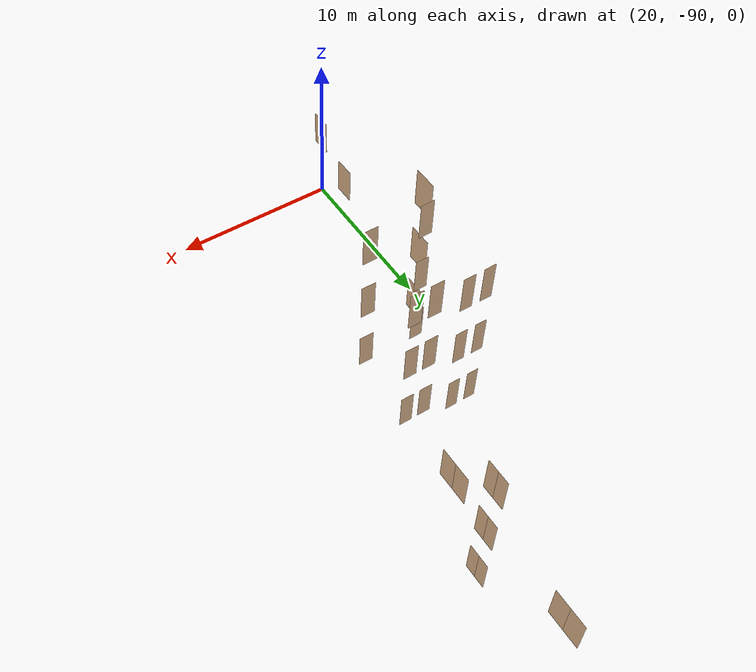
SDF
<sdf version="1.7">
 <world name="sim_world">
  <model name="Snull20">
   <pose>27.81230631370644 -62.99546354030538 0.0 0 0 1.5707963267948966</pose>
   <link name="right">
    <pose>0.34362282044580716 0 1.11 0 0 0</pose>
    <visual name="right_visual">
     <geometry><box><size>0.6772456408916143 0.03 2.2</size></box></geometry>
     <material>
      <ambient>0.5 0.25 0 0.6</ambient>
      <diffuse>0.5 0.25 0 0.6</diffuse>
      <pbr><metal><metalness>0.0</metalness></metal></pbr>
     </material>
    </visual>
    <collision name="right_collision">
     <geometry><box><size>0.6772456408916143 0.03 2.2</size></box></geometry>
     <surface><contact><collide_bitmask>0x02</collide_bitmask></contact></surface>
    </collision>
    <inertial>
     <mass>50.0</mass>
     <inertia><ixx>20.17041666666667</ixx><iyy>22.077756908777896</iyy><izz>1.9148402421112227</izz></inertia>
    </inertial>
   </link>
   <joint name="right_joint" type="prismatic">
    <parent>world</parent>
    <child>right</child>
    <axis>
     <xyz>1 0 0</xyz>
     <limit><lower>0.0</lower><upper>0.6872456408916143</upper><effort>500.0</effort></limit>
    </axis>
   </joint>
   <link name="left">
    <pose>-0.34362282044580716 0 1.11 0 0 0</pose>
    <visual name="left_visual">
     <geometry><box><size>0.6772456408916143 0.03 2.2</size></box></geometry>
     <material>
      <ambient>0.5 0.25 0 0.6</ambient>
      <diffuse>0.5 0.25 0 0.6</diffuse>
      <pbr><metal><metalness>0.0</metalness></metal></pbr>
     </material>
    </visual>
    <collision name="left_collision">
     <geometry><box><size>0.6772456408916143 0.03 2.2</size></box></geometry>
     <surface><contact><collide_bitmask>0x02</collide_bitmask></contact></surface>
    </collision>
    <inertial>
     <mass>50.0</mass>
     <inertia><ixx>20.17041666666667</ixx><iyy>22.077756908777896</iyy><izz>1.9148402421112227</izz></inertia>
    </inertial>
   </link>
   <joint name="left_joint" type="prismatic">
    <parent>world</parent>
    <child>left</child>
    <axis>
     <xyz>1 0 0</xyz>
     <limit><lower>-0.6872456408916143</lower><upper>0.0</upper><effort>500.0</effort></limit>
    </axis>
   </joint>
   <plugin name="register_component" filename="libregister_component.so">
    <component name="Door">
     <v_max_door>0.2</v_max_door>
     <a_max_door>0.2</a_max_door>
     <a_nom_door>0.08</a_nom_door>
     <dx_min_door>0.001</dx_min_door>
     <f_max_door>100.0</f_max_door>
     <ros_interface>true</ros_interface>
     <door name="Snull20" type="DoubleSlidingDoor" left_joint_name="left_joint" right_joint_name="right_joint"/>
    </component>
   </plugin>
  </model>
  <model name="0null20">
   <pose>27.81230631370644 -62.99546354030538 4.0 0 0 1.5707963267948966</pose>
   <link name="right">
    <pose>0.34362282044580716 0 1.11 0 0 0</pose>
    <visual name="right_visual">
     <geometry><box><size>0.6772456408916143 0.03 2.2</size></box></geometry>
     <material>
      <ambient>0.5 0.25 0 0.6</ambient>
      <diffuse>0.5 0.25 0 0.6</diffuse>
      <pbr><metal><metalness>0.0</metalness></metal></pbr>
     </material>
    </visual>
    <collision name="right_collision">
     <geometry><box><size>0.6772456408916143 0.03 2.2</size></box></geometry>
     <surface><contact><collide_bitmask>0x02</collide_bitmask></contact></surface>
    </collision>
    <inertial>
     <mass>50.0</mass>
     <inertia><ixx>20.17041666666667</ixx><iyy>22.077756908777896</iyy><izz>1.9148402421112227</izz></inertia>
    </inertial>
   </link>
   <joint name="right_joint" type="prismatic">
    <parent>world</parent>
    <child>right</child>
    <axis>
     <xyz>1 0 0</xyz>
     <limit><lower>0.0</lower><upper>0.6872456408916143</upper><effort>500.0</effort></limit>
    </axis>
   </joint>
   <link name="left">
    <pose>-0.34362282044580716 0 1.11 0 0 0</pose>
    <visual name="left_visual">
     <geometry><box><size>0.6772456408916143 0.03 2.2</size></box></geometry>
     <material>
      <ambient>0.5 0.25 0 0.6</ambient>
      <diffuse>0.5 0.25 0 0.6</diffuse>
      <pbr><metal><metalness>0.0</metalness></metal></pbr>
     </material>
    </visual>
    <collision name="left_collision">
     <geometry><box><size>0.6772456408916143 0.03 2.2</size></box></geometry>
     <surface><contact><collide_bitmask>0x02</collide_bitmask></contact></surface>
    </collision>
    <inertial>
     <mass>50.0</mass>
     <inertia><ixx>20.17041666666667</ixx><iyy>22.077756908777896</iyy><izz>1.9148402421112227</izz></inertia>
    </inertial>
   </link>
   <joint name="left_joint" type="prismatic">
    <parent>world</parent>
    <child>left</child>
    <axis>
     <xyz>1 0 0</xyz>
     <limit><lower>-0.6872456408916143</lower><upper>0.0</upper><effort>500.0</effort></limit>
    </axis>
   </joint>
   <plugin name="register_component" filename="libregister_component.so">
    <component name="Door">
     <v_max_door>0.2</v_max_door>
     <a_max_door>0.2</a_max_door>
     <a_nom_door>0.08</a_nom_door>
     <dx_min_door>0.001</dx_min_door>
     <f_max_door>100.0</f_max_door>
     <ros_interface>true</ros_interface>
     <door name="0null20" type="DoubleSlidingDoor" left_joint_name="left_joint" right_joint_name="right_joint"/>
    </component>
   </plugin>
  </model>
  <model name="0null33">
   <pose>27.455960870701546 -65.96759138259338 4.0 0 0 1.5707963267948966</pose>
   <link name="right">
    <pose>0.4972370533547412 0 1.11 0 0 0</pose>
    <visual name="right_visual">
     <geometry><box><size>0.9844741067094824 0.03 2.2</size></box></geometry>
     <material>
      <ambient>0.5 0.25 0 0.6</ambient>
      <diffuse>0.5 0.25 0 0.6</diffuse>
      <pbr><metal><metalness>0.0</metalness></metal></pbr>
     </material>
    </visual>
    <collision name="right_collision">
     <geometry><box><size>0.9844741067094824 0.03 2.2</size></box></geometry>
     <surface><contact><collide_bitmask>0x02</collide_bitmask></contact></surface>
    </collision>
    <inertial>
     <mass>50.0</mass>
     <inertia><ixx>20.17041666666667</ixx><iyy>24.204955278255976</iyy><izz>4.042038611589306</izz></inertia>
    </inertial>
   </link>
   <joint name="right_joint" type="revolute">
    <parent>world</parent>
    <child>right</child>
    <axis><xyz>0 0 -1</xyz><limit><lower>0</lower><upper>1.57</upper></limit></axis>
    <pose>0.4972370533547412 0 0 0 0 0</pose>
   </joint>
   <link name="left">
    <pose>-0.4972370533547412 0 1.11 0 0 0</pose>
    <visual name="left_visual">
     <geometry><box><size>0.9844741067094824 0.03 2.2</size></box></geometry>
     <material>
      <ambient>0.5 0.25 0 0.6</ambient>
      <diffuse>0.5 0.25 0 0.6</diffuse>
      <pbr><metal><metalness>0.0</metalness></metal></pbr>
     </material>
    </visual>
    <collision name="left_collision">
     <geometry><box><size>0.9844741067094824 0.03 2.2</size></box></geometry>
     <surface><contact><collide_bitmask>0x02</collide_bitmask></contact></surface>
    </collision>
    <inertial>
     <mass>50.0</mass>
     <inertia><ixx>20.17041666666667</ixx><iyy>24.204955278255976</iyy><izz>4.042038611589306</izz></inertia>
    </inertial>
   </link>
   <joint name="left_joint" type="revolute">
    <parent>world</parent>
    <child>left</child>
    <axis><xyz>0 0 -1</xyz><limit><lower>-1.57</lower><upper>0</upper></limit></axis>
    <pose>-0.4972370533547412 0 0 0 0 0</pose>
   </joint>
   <plugin name="register_component" filename="libregister_component.so">
    <component name="Door">
     <v_max_door>0.5</v_max_door>
     <a_max_door>0.3</a_max_door>
     <a_nom_door>0.15</a_nom_door>
     <dx_min_door>0.01</dx_min_door>
     <f_max_door>500.0</f_max_door>
     <ros_interface>true</ros_interface>
     <door name="0null33" type="DoubleSwingDoor" left_joint_name="left_joint" right_joint_name="right_joint"/>
    </component>
   </plugin>
  </model>
  <model name="0null50">
   <pose>27.46846880483887 -57.59207333009741 4.0 0 0 1.5707963267948966</pose>
   <link name="right">
    <pose>0.5057032445954519 0 1.11 0 0 0</pose>
    <visual name="right_visual">
     <geometry><box><size>1.0014064891909038 0.03 2.2</size></box></geometry>
     <material>
      <ambient>0.5 0.25 0 0.6</ambient>
      <diffuse>0.5 0.25 0 0.6</diffuse>
      <pbr><metal><metalness>0.0</metalness></metal></pbr>
     </material>
    </visual>
    <collision name="right_collision">
     <geometry><box><size>1.0014064891909038 0.03 2.2</size></box></geometry>
     <surface><contact><collide_bitmask>0x02</collide_bitmask></contact></surface>
    </collision>
    <inertial>
     <mass>50.0</mass>
     <inertia><ixx>20.17041666666667</ixx><iyy>24.345062319140222</iyy><izz>4.182145652473548</izz></inertia>
    </inertial>
   </link>
   <joint name="right_joint" type="revolute">
    <parent>world</parent>
    <child>right</child>
    <axis><xyz>0 0 -1</xyz><limit><lower>0</lower><upper>1.57</upper></limit></axis>
    <pose>0.5057032445954519 0 0 0 0 0</pose>
   </joint>
   <link name="left">
    <pose>-0.5057032445954519 0 1.11 0 0 0</pose>
    <visual name="left_visual">
     <geometry><box><size>1.0014064891909038 0.03 2.2</size></box></geometry>
     <material>
      <ambient>0.5 0.25 0 0.6</ambient>
      <diffuse>0.5 0.25 0 0.6</diffuse>
      <pbr><metal><metalness>0.0</metalness></metal></pbr>
     </material>
    </visual>
    <collision name="left_collision">
     <geometry><box><size>1.0014064891909038 0.03 2.2</size></box></geometry>
     <surface><contact><collide_bitmask>0x02</collide_bitmask></contact></surface>
    </collision>
    <inertial>
     <mass>50.0</mass>
     <inertia><ixx>20.17041666666667</ixx><iyy>24.345062319140222</iyy><izz>4.182145652473548</izz></inertia>
    </inertial>
   </link>
   <joint name="left_joint" type="revolute">
    <parent>world</parent>
    <child>left</child>
    <axis><xyz>0 0 -1</xyz><limit><lower>-1.57</lower><upper>0</upper></limit></axis>
    <pose>-0.5057032445954519 0 0 0 0 0</pose>
   </joint>
   <plugin name="register_component" filename="libregister_component.so">
    <component name="Door">
     <v_max_door>0.5</v_max_door>
     <a_max_door>0.3</a_max_door>
     <a_nom_door>0.15</a_nom_door>
     <dx_min_door>0.01</dx_min_door>
     <f_max_door>500.0</f_max_door>
     <ros_interface>true</ros_interface>
     <door name="0null50" type="DoubleSwingDoor" left_joint_name="left_joint" right_joint_name="right_joint"/>
    </component>
   </plugin>
  </model>
  <model name="0null51">
   <pose>23.572079304036127 -69.87992383228163 4.0 0 0 0.0</pose>
   <link name="right">
    <pose>0 0 1.11 0 0 0</pose>
    <visual name="right_visual">
     <geometry><box><size>0.6295848112608746 0.03 2.2</size></box></geometry>
     <material>
      <ambient>0.5 0.25 0 0.6</ambient>
      <diffuse>0.5 0.25 0 0.6</diffuse>
      <pbr><metal><metalness>0.0</metalness></metal></pbr>
     </material>
    </visual>
    <collision name="right_collision">
     <geometry><box><size>0.6295848112608746 0.03 2.2</size></box></geometry>
     <surface><contact><collide_bitmask>0x02</collide_bitmask></contact></surface>
    </collision>
    <inertial>
     <mass>50.0</mass>
     <inertia><ixx>20.17041666666667</ixx><iyy>21.8182376440433</iyy><izz>1.65532097737663</izz></inertia>
    </inertial>
   </link>
   <joint name="right_joint" type="revolute">
    <parent>world</parent>
    <child>right</child>
    <axis><xyz>0 0 -1</xyz><limit><lower>0</lower><upper>1.57</upper></limit></axis>
    <pose>0.3197924056304373 0 0 0 0 0</pose>
   </joint>
   <plugin name="register_component" filename="libregister_component.so">
    <component name="Door">
     <v_max_door>0.5</v_max_door>
     <a_max_door>0.3</a_max_door>
     <a_nom_door>0.15</a_nom_door>
     <dx_min_door>0.01</dx_min_door>
     <f_max_door>500.0</f_max_door>
     <ros_interface>true</ros_interface>
     <door name="0null51" type="SwingDoor" left_joint_name="empty_joint" right_joint_name="right_joint"/>
    </component>
   </plugin>
  </model>
  <model name="0null52">
   <pose>24.693816973453295 -69.87992383228163 4.0 0 0 3.141592653589793</pose>
   <link name="right">
    <pose>0 0 1.11 0 0 0</pose>
    <visual name="right_visual">
     <geometry><box><size>0.6492614718291401 0.03 2.2</size></box></geometry>
     <material>
      <ambient>0.5 0.25 0 0.6</ambient>
      <diffuse>0.5 0.25 0 0.6</diffuse>
      <pbr><metal><metalness>0.0</metalness></metal></pbr>
     </material>
    </visual>
    <collision name="right_collision">
     <geometry><box><size>0.6492614718291401 0.03 2.2</size></box></geometry>
     <surface><contact><collide_bitmask>0x02</collide_bitmask></contact></surface>
    </collision>
    <inertial>
     <mass>50.0</mass>
     <inertia><ixx>20.17041666666667</ixx><iyy>21.923085245007258</iyy><izz>1.7601685783405887</izz></inertia>
    </inertial>
   </link>
   <joint name="right_joint" type="revolute">
    <parent>world</parent>
    <child>right</child>
    <axis><xyz>0 0 1</xyz><limit><lower>0</lower><upper>1.57</upper></limit></axis>
    <pose>0.32963073591457004 0 0 0 0 0</pose>
   </joint>
   <plugin name="register_component" filename="libregister_component.so">
    <component name="Door">
     <v_max_door>0.5</v_max_door>
     <a_max_door>0.3</a_max_door>
     <a_nom_door>0.15</a_nom_door>
     <dx_min_door>0.01</dx_min_door>
     <f_max_door>500.0</f_max_door>
     <ros_interface>true</ros_interface>
     <door name="0null52" type="SwingDoor" left_joint_name="empty_joint" right_joint_name="right_joint"/>
    </component>
   </plugin>
  </model>
  <model name="0null53">
   <pose>26.114606280103033 -70.32860396520176 4.0 0 0 0.0</pose>
   <link name="right">
    <pose>0 0 1.11 0 0 0</pose>
    <visual name="right_visual">
     <geometry><box><size>0.7228155919799855 0.03 2.2</size></box></geometry>
     <material>
      <ambient>0.5 0.25 0 0.6</ambient>
      <diffuse>0.5 0.25 0 0.6</diffuse>
      <pbr><metal><metalness>0.0</metalness></metal></pbr>
     </material>
    </visual>
    <collision name="right_collision">
     <geometry><box><size>0.7228155919799855 0.03 2.2</size></box></geometry>
     <surface><contact><collide_bitmask>0x02</collide_bitmask></contact></surface>
    </collision>
    <inertial>
     <mass>50.0</mass>
     <inertia><ixx>20.17041666666667</ixx><iyy>22.343593250039074</iyy><izz>2.1806765833724038</izz></inertia>
    </inertial>
   </link>
   <joint name="right_joint" type="revolute">
    <parent>world</parent>
    <child>right</child>
    <axis><xyz>0 0 -1</xyz><limit><lower>0</lower><upper>1.57</upper></limit></axis>
    <pose>0.36640779598999274 0 0 0 0 0</pose>
   </joint>
   <plugin name="register_component" filename="libregister_component.so">
    <component name="Door">
     <v_max_door>0.5</v_max_door>
     <a_max_door>0.3</a_max_door>
     <a_nom_door>0.15</a_nom_door>
     <dx_min_door>0.01</dx_min_door>
     <f_max_door>500.0</f_max_door>
     <ros_interface>true</ros_interface>
     <door name="0null53" type="SwingDoor" left_joint_name="empty_joint" right_joint_name="right_joint"/>
    </component>
   </plugin>
  </model>
  <model name="0null54">
   <pose>27.208938505768565 -70.32860396520176 4.0 0 0 3.141592653589793</pose>
   <link name="right">
    <pose>0 0 1.11 0 0 0</pose>
    <visual name="right_visual">
     <geometry><box><size>0.708067430832992 0.03 2.2</size></box></geometry>
     <material>
      <ambient>0.5 0.25 0 0.6</ambient>
      <diffuse>0.5 0.25 0 0.6</diffuse>
      <pbr><metal><metalness>0.0</metalness></metal></pbr>
     </material>
    </visual>
    <collision name="right_collision">
     <geometry><box><size>0.708067430832992 0.03 2.2</size></box></geometry>
     <surface><contact><collide_bitmask>0x02</collide_bitmask></contact></surface>
    </collision>
    <inertial>
     <mass>50.0</mass>
     <inertia><ixx>20.17041666666667</ixx><iyy>22.255664527526815</iyy><izz>2.092747860860141</izz></inertia>
    </inertial>
   </link>
   <joint name="right_joint" type="revolute">
    <parent>world</parent>
    <child>right</child>
    <axis><xyz>0 0 1</xyz><limit><lower>0</lower><upper>1.57</upper></limit></axis>
    <pose>0.359033715416496 0 0 0 0 0</pose>
   </joint>
   <plugin name="register_component" filename="libregister_component.so">
    <component name="Door">
     <v_max_door>0.5</v_max_door>
     <a_max_door>0.3</a_max_door>
     <a_nom_door>0.15</a_nom_door>
     <dx_min_door>0.01</dx_min_door>
     <f_max_door>500.0</f_max_door>
     <ros_interface>true</ros_interface>
     <door name="0null54" type="SwingDoor" left_joint_name="empty_joint" right_joint_name="right_joint"/>
    </component>
   </plugin>
  </model>
  <model name="0null55">
   <pose>23.66503005637903 -74.55944068998987 4.0 0 0 -3.1305344986137533</pose>
   <link name="right">
    <pose>0 0 1.11 0 0 0</pose>
    <visual name="right_visual">
     <geometry><box><size>0.7564658594399267 0.03 2.2</size></box></geometry>
     <material>
      <ambient>0.5 0.25 0 0.6</ambient>
      <diffuse>0.5 0.25 0 0.6</diffuse>
      <pbr><metal><metalness>0.0</metalness></metal></pbr>
     </material>
    </visual>
    <collision name="right_collision">
     <geometry><box><size>0.7564658594399267 0.03 2.2</size></box></geometry>
     <surface><contact><collide_bitmask>0x02</collide_bitmask></contact></surface>
    </collision>
    <inertial>
     <mass>50.0</mass>
     <inertia><ixx>20.17041666666667</ixx><iyy>22.551002485409114</iyy><izz>2.3880858187424456</izz></inertia>
    </inertial>
   </link>
   <joint name="right_joint" type="revolute">
    <parent>world</parent>
    <child>right</child>
    <axis><xyz>0 0 1</xyz><limit><lower>0</lower><upper>1.57</upper></limit></axis>
    <pose>0.38323292971996337 0 0 0 0 0</pose>
   </joint>
   <plugin name="register_component" filename="libregister_component.so">
    <component name="Door">
     <v_max_door>0.5</v_max_door>
     <a_max_door>0.3</a_max_door>
     <a_nom_door>0.15</a_nom_door>
     <dx_min_door>0.01</dx_min_door>
     <f_max_door>500.0</f_max_door>
     <ros_interface>true</ros_interface>
     <door name="0null55" type="SwingDoor" left_joint_name="empty_joint" right_joint_name="right_joint"/>
    </component>
   </plugin>
  </model>
  <model name="0null56">
   <pose>26.843818840309133 -74.56367845274983 4.0 0 0 0.0</pose>
   <link name="right">
    <pose>0 0 1.11 0 0 0</pose>
    <visual name="right_visual">
     <geometry><box><size>0.7968550946495883 0.03 2.2</size></box></geometry>
     <material>
      <ambient>0.5 0.25 0 0.6</ambient>
      <diffuse>0.5 0.25 0 0.6</diffuse>
      <pbr><metal><metalness>0.0</metalness></metal></pbr>
     </material>
    </visual>
    <collision name="right_collision">
     <geometry><box><size>0.7968550946495883 0.03 2.2</size></box></geometry>
     <surface><contact><collide_bitmask>0x02</collide_bitmask></contact></surface>
    </collision>
    <inertial>
     <mass>50.0</mass>
     <inertia><ixx>20.17041666666667</ixx><iyy>22.812408507787524</iyy><izz>2.6494918411208515</izz></inertia>
    </inertial>
   </link>
   <joint name="right_joint" type="revolute">
    <parent>world</parent>
    <child>right</child>
    <axis><xyz>0 0 -1</xyz><limit><lower>0</lower><upper>1.57</upper></limit></axis>
    <pose>0.40342754732479413 0 0 0 0 0</pose>
   </joint>
   <plugin name="register_component" filename="libregister_component.so">
    <component name="Door">
     <v_max_door>0.5</v_max_door>
     <a_max_door>0.3</a_max_door>
     <a_nom_door>0.15</a_nom_door>
     <dx_min_door>0.01</dx_min_door>
     <f_max_door>500.0</f_max_door>
     <ros_interface>true</ros_interface>
     <door name="0null56" type="SwingDoor" left_joint_name="empty_joint" right_joint_name="right_joint"/>
    </component>
   </plugin>
  </model>
  <model name="0null57">
   <pose>22.824216853974523 -75.96718067430828 4.0 0 0 -1.5707963267948966</pose>
   <link name="right">
    <pose>0 0 1.11 0 0 0</pose>
    <visual name="right_visual">
     <geometry><box><size>1.2964257178060643 0.03 2.2</size></box></geometry>
     <material>
      <ambient>0.5 0.25 0 0.6</ambient>
      <diffuse>0.5 0.25 0 0.6</diffuse>
      <pbr><metal><metalness>0.0</metalness></metal></pbr>
     </material>
    </visual>
    <collision name="right_collision">
     <geometry><box><size>1.2964257178060643 0.03 2.2</size></box></geometry>
     <surface><contact><collide_bitmask>0x02</collide_bitmask></contact></surface>
    </collision>
    <inertial>
     <mass>50.0</mass>
     <inertia><ixx>20.17041666666667</ixx><iyy>27.16966517412071</iyy><izz>7.006748507454038</izz></inertia>
    </inertial>
   </link>
   <joint name="right_joint" type="revolute">
    <parent>world</parent>
    <child>right</child>
    <axis><xyz>0 0 -1</xyz><limit><lower>0</lower><upper>1.57</upper></limit></axis>
    <pose>0.6532128589030322 0 0 0 0 0</pose>
   </joint>
   <plugin name="register_component" filename="libregister_component.so">
    <component name="Door">
     <v_max_door>0.5</v_max_door>
     <a_max_door>0.3</a_max_door>
     <a_nom_door>0.15</a_nom_door>
     <dx_min_door>0.01</dx_min_door>
     <f_max_door>500.0</f_max_door>
     <ros_interface>true</ros_interface>
     <door name="0null57" type="SwingDoor" left_joint_name="empty_joint" right_joint_name="right_joint"/>
    </component>
   </plugin>
  </model>
  <model name="0null61">
   <pose>21.194563715789855 -85.5821416570212 4.0 0 0 -1.5707963267948966</pose>
   <link name="right">
    <pose>0 0 1.11 0 0 0</pose>
    <visual name="right_visual">
     <geometry><box><size>1.2200713138931485 0.03 2.2</size></box></geometry>
     <material>
      <ambient>0.5 0.25 0 0.6</ambient>
      <diffuse>0.5 0.25 0 0.6</diffuse>
      <pbr><metal><metalness>0.0</metalness></metal></pbr>
     </material>
    </visual>
    <collision name="right_collision">
     <geometry><box><size>1.2200713138931485 0.03 2.2</size></box></geometry>
     <surface><contact><collide_bitmask>0x02</collide_bitmask></contact></surface>
    </collision>
    <inertial>
     <mass>50.0</mass>
     <inertia><ixx>20.17041666666667</ixx><iyy>26.36905837910398</iyy><izz>6.206141712437307</izz></inertia>
    </inertial>
   </link>
   <joint name="right_joint" type="revolute">
    <parent>world</parent>
    <child>right</child>
    <axis><xyz>0 0 1</xyz><limit><lower>0</lower><upper>1.57</upper></limit></axis>
    <pose>0.6150356569465742 0 0 0 0 0</pose>
   </joint>
   <plugin name="register_component" filename="libregister_component.so">
    <component name="Door">
     <v_max_door>0.5</v_max_door>
     <a_max_door>0.3</a_max_door>
     <a_nom_door>0.15</a_nom_door>
     <dx_min_door>0.01</dx_min_door>
     <f_max_door>500.0</f_max_door>
     <ros_interface>true</ros_interface>
     <door name="0null61" type="SwingDoor" left_joint_name="empty_joint" right_joint_name="right_joint"/>
    </component>
   </plugin>
  </model>
  <model name="0null62">
   <pose>20.1770526079976 -89.85169697195977 4.0 0 0 -1.5674074995689025</pose>
   <link name="right">
    <pose>0 0 1.11 0 0 0</pose>
    <visual name="right_visual">
     <geometry><box><size>1.268056847708154 0.03 2.2</size></box></geometry>
     <material>
      <ambient>0.5 0.25 0 0.6</ambient>
      <diffuse>0.5 0.25 0 0.6</diffuse>
      <pbr><metal><metalness>0.0</metalness></metal></pbr>
     </material>
    </visual>
    <collision name="right_collision">
     <geometry><box><size>1.268056847708154 0.03 2.2</size></box></geometry>
     <surface><contact><collide_bitmask>0x02</collide_bitmask></contact></surface>
    </collision>
    <inertial>
     <mass>50.0</mass>
     <inertia><ixx>20.17041666666667</ixx><iyy>26.866534037581424</iyy><izz>6.703617370914752</izz></inertia>
    </inertial>
   </link>
   <joint name="right_joint" type="revolute">
    <parent>world</parent>
    <child>right</child>
    <axis><xyz>0 0 1</xyz><limit><lower>0</lower><upper>1.57</upper></limit></axis>
    <pose>0.639028423854077 0 0 0 0 0</pose>
   </joint>
   <plugin name="register_component" filename="libregister_component.so">
    <component name="Door">
     <v_max_door>0.5</v_max_door>
     <a_max_door>0.3</a_max_door>
     <a_nom_door>0.15</a_nom_door>
     <dx_min_door>0.01</dx_min_door>
     <f_max_door>500.0</f_max_door>
     <ros_interface>true</ros_interface>
     <door name="0null62" type="SwingDoor" left_joint_name="empty_joint" right_joint_name="right_joint"/>
    </component>
   </plugin>
  </model>
  <model name="1null20">
   <pose>27.81230631370644 -62.99546354030538 8.0 0 0 1.5707963267948966</pose>
   <link name="right">
    <pose>0.34362282044580716 0 1.11 0 0 0</pose>
    <visual name="right_visual">
     <geometry><box><size>0.6772456408916143 0.03 2.2</size></box></geometry>
     <material>
      <ambient>0.5 0.25 0 0.6</ambient>
      <diffuse>0.5 0.25 0 0.6</diffuse>
      <pbr><metal><metalness>0.0</metalness></metal></pbr>
     </material>
    </visual>
    <collision name="right_collision">
     <geometry><box><size>0.6772456408916143 0.03 2.2</size></box></geometry>
     <surface><contact><collide_bitmask>0x02</collide_bitmask></contact></surface>
    </collision>
    <inertial>
     <mass>50.0</mass>
     <inertia><ixx>20.17041666666667</ixx><iyy>22.077756908777896</iyy><izz>1.9148402421112227</izz></inertia>
    </inertial>
   </link>
   <joint name="right_joint" type="prismatic">
    <parent>world</parent>
    <child>right</child>
    <axis>
     <xyz>1 0 0</xyz>
     <limit><lower>0.0</lower><upper>0.6872456408916143</upper><effort>500.0</effort></limit>
    </axis>
   </joint>
   <link name="left">
    <pose>-0.34362282044580716 0 1.11 0 0 0</pose>
    <visual name="left_visual">
     <geometry><box><size>0.6772456408916143 0.03 2.2</size></box></geometry>
     <material>
      <ambient>0.5 0.25 0 0.6</ambient>
      <diffuse>0.5 0.25 0 0.6</diffuse>
      <pbr><metal><metalness>0.0</metalness></metal></pbr>
     </material>
    </visual>
    <collision name="left_collision">
     <geometry><box><size>0.6772456408916143 0.03 2.2</size></box></geometry>
     <surface><contact><collide_bitmask>0x02</collide_bitmask></contact></surface>
    </collision>
    <inertial>
     <mass>50.0</mass>
     <inertia><ixx>20.17041666666667</ixx><iyy>22.077756908777896</iyy><izz>1.9148402421112227</izz></inertia>
    </inertial>
   </link>
   <joint name="left_joint" type="prismatic">
    <parent>world</parent>
    <child>left</child>
    <axis>
     <xyz>1 0 0</xyz>
     <limit><lower>-0.6872456408916143</lower><upper>0.0</upper><effort>500.0</effort></limit>
    </axis>
   </joint>
   <plugin name="register_component" filename="libregister_component.so">
    <component name="Door">
     <v_max_door>0.2</v_max_door>
     <a_max_door>0.2</a_max_door>
     <a_nom_door>0.08</a_nom_door>
     <dx_min_door>0.001</dx_min_door>
     <f_max_door>100.0</f_max_door>
     <ros_interface>true</ros_interface>
     <door name="1null20" type="DoubleSlidingDoor" left_joint_name="left_joint" right_joint_name="right_joint"/>
    </component>
   </plugin>
  </model>
  <model name="1null51">
   <pose>23.572079304036127 -69.87992383228163 8.0 0 0 0.0</pose>
   <link name="right">
    <pose>0 0 1.11 0 0 0</pose>
    <visual name="right_visual">
     <geometry><box><size>0.6295848112608746 0.03 2.2</size></box></geometry>
     <material>
      <ambient>0.5 0.25 0 0.6</ambient>
      <diffuse>0.5 0.25 0 0.6</diffuse>
      <pbr><metal><metalness>0.0</metalness></metal></pbr>
     </material>
    </visual>
    <collision name="right_collision">
     <geometry><box><size>0.6295848112608746 0.03 2.2</size></box></geometry>
     <surface><contact><collide_bitmask>0x02</collide_bitmask></contact></surface>
    </collision>
    <inertial>
     <mass>50.0</mass>
     <inertia><ixx>20.17041666666667</ixx><iyy>21.8182376440433</iyy><izz>1.65532097737663</izz></inertia>
    </inertial>
   </link>
   <joint name="right_joint" type="revolute">
    <parent>world</parent>
    <child>right</child>
    <axis><xyz>0 0 -1</xyz><limit><lower>0</lower><upper>1.57</upper></limit></axis>
    <pose>0.3197924056304373 0 0 0 0 0</pose>
   </joint>
   <plugin name="register_component" filename="libregister_component.so">
    <component name="Door">
     <v_max_door>0.5</v_max_door>
     <a_max_door>0.3</a_max_door>
     <a_nom_door>0.15</a_nom_door>
     <dx_min_door>0.01</dx_min_door>
     <f_max_door>500.0</f_max_door>
     <ros_interface>true</ros_interface>
     <door name="1null51" type="SwingDoor" left_joint_name="empty_joint" right_joint_name="right_joint"/>
    </component>
   </plugin>
  </model>
  <model name="1null52">
   <pose>24.693816973453295 -69.87992383228163 8.0 0 0 3.141592653589793</pose>
   <link name="right">
    <pose>0 0 1.11 0 0 0</pose>
    <visual name="right_visual">
     <geometry><box><size>0.6492614718291401 0.03 2.2</size></box></geometry>
     <material>
      <ambient>0.5 0.25 0 0.6</ambient>
      <diffuse>0.5 0.25 0 0.6</diffuse>
      <pbr><metal><metalness>0.0</metalness></metal></pbr>
     </material>
    </visual>
    <collision name="right_collision">
     <geometry><box><size>0.6492614718291401 0.03 2.2</size></box></geometry>
     <surface><contact><collide_bitmask>0x02</collide_bitmask></contact></surface>
    </collision>
    <inertial>
     <mass>50.0</mass>
     <inertia><ixx>20.17041666666667</ixx><iyy>21.923085245007258</iyy><izz>1.7601685783405887</izz></inertia>
    </inertial>
   </link>
   <joint name="right_joint" type="revolute">
    <parent>world</parent>
    <child>right</child>
    <axis><xyz>0 0 1</xyz><limit><lower>0</lower><upper>1.57</upper></limit></axis>
    <pose>0.32963073591457004 0 0 0 0 0</pose>
   </joint>
   <plugin name="register_component" filename="libregister_component.so">
    <component name="Door">
     <v_max_door>0.5</v_max_door>
     <a_max_door>0.3</a_max_door>
     <a_nom_door>0.15</a_nom_door>
     <dx_min_door>0.01</dx_min_door>
     <f_max_door>500.0</f_max_door>
     <ros_interface>true</ros_interface>
     <door name="1null52" type="SwingDoor" left_joint_name="empty_joint" right_joint_name="right_joint"/>
    </component>
   </plugin>
  </model>
  <model name="1null53">
   <pose>26.114606280103033 -70.32860396520176 8.0 0 0 0.0</pose>
   <link name="right">
    <pose>0 0 1.11 0 0 0</pose>
    <visual name="right_visual">
     <geometry><box><size>0.7228155919799855 0.03 2.2</size></box></geometry>
     <material>
      <ambient>0.5 0.25 0 0.6</ambient>
      <diffuse>0.5 0.25 0 0.6</diffuse>
      <pbr><metal><metalness>0.0</metalness></metal></pbr>
     </material>
    </visual>
    <collision name="right_collision">
     <geometry><box><size>0.7228155919799855 0.03 2.2</size></box></geometry>
     <surface><contact><collide_bitmask>0x02</collide_bitmask></contact></surface>
    </collision>
    <inertial>
     <mass>50.0</mass>
     <inertia><ixx>20.17041666666667</ixx><iyy>22.343593250039074</iyy><izz>2.1806765833724038</izz></inertia>
    </inertial>
   </link>
   <joint name="right_joint" type="revolute">
    <parent>world</parent>
    <child>right</child>
    <axis><xyz>0 0 -1</xyz><limit><lower>0</lower><upper>1.57</upper></limit></axis>
    <pose>0.36640779598999274 0 0 0 0 0</pose>
   </joint>
   <plugin name="register_component" filename="libregister_component.so">
    <component name="Door">
     <v_max_door>0.5</v_max_door>
     <a_max_door>0.3</a_max_door>
     <a_nom_door>0.15</a_nom_door>
     <dx_min_door>0.01</dx_min_door>
     <f_max_door>500.0</f_max_door>
     <ros_interface>true</ros_interface>
     <door name="1null53" type="SwingDoor" left_joint_name="empty_joint" right_joint_name="right_joint"/>
    </component>
   </plugin>
  </model>
  <model name="1null54">
   <pose>27.208938505768565 -70.32860396520176 8.0 0 0 3.141592653589793</pose>
   <link name="right">
    <pose>0 0 1.11 0 0 0</pose>
    <visual name="right_visual">
     <geometry><box><size>0.708067430832992 0.03 2.2</size></box></geometry>
     <material>
      <ambient>0.5 0.25 0 0.6</ambient>
      <diffuse>0.5 0.25 0 0.6</diffuse>
      <pbr><metal><metalness>0.0</metalness></metal></pbr>
     </material>
    </visual>
    <collision name="right_collision">
     <geometry><box><size>0.708067430832992 0.03 2.2</size></box></geometry>
     <surface><contact><collide_bitmask>0x02</collide_bitmask></contact></surface>
    </collision>
    <inertial>
     <mass>50.0</mass>
     <inertia><ixx>20.17041666666667</ixx><iyy>22.255664527526815</iyy><izz>2.092747860860141</izz></inertia>
    </inertial>
   </link>
   <joint name="right_joint" type="revolute">
    <parent>world</parent>
    <child>right</child>
    <axis><xyz>0 0 1</xyz><limit><lower>0</lower><upper>1.57</upper></limit></axis>
    <pose>0.359033715416496 0 0 0 0 0</pose>
   </joint>
   <plugin name="register_component" filename="libregister_component.so">
    <component name="Door">
     <v_max_door>0.5</v_max_door>
     <a_max_door>0.3</a_max_door>
     <a_nom_door>0.15</a_nom_door>
     <dx_min_door>0.01</dx_min_door>
     <f_max_door>500.0</f_max_door>
     <ros_interface>true</ros_interface>
     <door name="1null54" type="SwingDoor" left_joint_name="empty_joint" right_joint_name="right_joint"/>
    </component>
   </plugin>
  </model>
  <model name="1null55">
   <pose>23.66503005637903 -74.55944068998987 8.0 0 0 -3.1305344986137533</pose>
   <link name="right">
    <pose>0 0 1.11 0 0 0</pose>
    <visual name="right_visual">
     <geometry><box><size>0.7564658594399267 0.03 2.2</size></box></geometry>
     <material>
      <ambient>0.5 0.25 0 0.6</ambient>
      <diffuse>0.5 0.25 0 0.6</diffuse>
      <pbr><metal><metalness>0.0</metalness></metal></pbr>
     </material>
    </visual>
    <collision name="right_collision">
     <geometry><box><size>0.7564658594399267 0.03 2.2</size></box></geometry>
     <surface><contact><collide_bitmask>0x02</collide_bitmask></contact></surface>
    </collision>
    <inertial>
     <mass>50.0</mass>
     <inertia><ixx>20.17041666666667</ixx><iyy>22.551002485409114</iyy><izz>2.3880858187424456</izz></inertia>
    </inertial>
   </link>
   <joint name="right_joint" type="revolute">
    <parent>world</parent>
    <child>right</child>
    <axis><xyz>0 0 1</xyz><limit><lower>0</lower><upper>1.57</upper></limit></axis>
    <pose>0.38323292971996337 0 0 0 0 0</pose>
   </joint>
   <plugin name="register_component" filename="libregister_component.so">
    <component name="Door">
     <v_max_door>0.5</v_max_door>
     <a_max_door>0.3</a_max_door>
     <a_nom_door>0.15</a_nom_door>
     <dx_min_door>0.01</dx_min_door>
     <f_max_door>500.0</f_max_door>
     <ros_interface>true</ros_interface>
     <door name="1null55" type="SwingDoor" left_joint_name="empty_joint" right_joint_name="right_joint"/>
    </component>
   </plugin>
  </model>
  <model name="1null56">
   <pose>26.843818840309133 -74.56367845274983 8.0 0 0 0.0</pose>
   <link name="right">
    <pose>0 0 1.11 0 0 0</pose>
    <visual name="right_visual">
     <geometry><box><size>0.7968550946495883 0.03 2.2</size></box></geometry>
     <material>
      <ambient>0.5 0.25 0 0.6</ambient>
      <diffuse>0.5 0.25 0 0.6</diffuse>
      <pbr><metal><metalness>0.0</metalness></metal></pbr>
     </material>
    </visual>
    <collision name="right_collision">
     <geometry><box><size>0.7968550946495883 0.03 2.2</size></box></geometry>
     <surface><contact><collide_bitmask>0x02</collide_bitmask></contact></surface>
    </collision>
    <inertial>
     <mass>50.0</mass>
     <inertia><ixx>20.17041666666667</ixx><iyy>22.812408507787524</iyy><izz>2.6494918411208515</izz></inertia>
    </inertial>
   </link>
   <joint name="right_joint" type="revolute">
    <parent>world</parent>
    <child>right</child>
    <axis><xyz>0 0 -1</xyz><limit><lower>0</lower><upper>1.57</upper></limit></axis>
    <pose>0.40342754732479413 0 0 0 0 0</pose>
   </joint>
   <plugin name="register_component" filename="libregister_component.so">
    <component name="Door">
     <v_max_door>0.5</v_max_door>
     <a_max_door>0.3</a_max_door>
     <a_nom_door>0.15</a_nom_door>
     <dx_min_door>0.01</dx_min_door>
     <f_max_door>500.0</f_max_door>
     <ros_interface>true</ros_interface>
     <door name="1null56" type="SwingDoor" left_joint_name="empty_joint" right_joint_name="right_joint"/>
    </component>
   </plugin>
  </model>
  <model name="1null57">
   <pose>22.824216853974523 -75.96718067430828 8.0 0 0 -1.5707963267948966</pose>
   <link name="right">
    <pose>0 0 1.11 0 0 0</pose>
    <visual name="right_visual">
     <geometry><box><size>1.2964257178060643 0.03 2.2</size></box></geometry>
     <material>
      <ambient>0.5 0.25 0 0.6</ambient>
      <diffuse>0.5 0.25 0 0.6</diffuse>
      <pbr><metal><metalness>0.0</metalness></metal></pbr>
     </material>
    </visual>
    <collision name="right_collision">
     <geometry><box><size>1.2964257178060643 0.03 2.2</size></box></geometry>
     <surface><contact><collide_bitmask>0x02</collide_bitmask></contact></surface>
    </collision>
    <inertial>
     <mass>50.0</mass>
     <inertia><ixx>20.17041666666667</ixx><iyy>27.16966517412071</iyy><izz>7.006748507454038</izz></inertia>
    </inertial>
   </link>
   <joint name="right_joint" type="revolute">
    <parent>world</parent>
    <child>right</child>
    <axis><xyz>0 0 -1</xyz><limit><lower>0</lower><upper>1.57</upper></limit></axis>
    <pose>0.6532128589030322 0 0 0 0 0</pose>
   </joint>
   <plugin name="register_component" filename="libregister_component.so">
    <component name="Door">
     <v_max_door>0.5</v_max_door>
     <a_max_door>0.3</a_max_door>
     <a_nom_door>0.15</a_nom_door>
     <dx_min_door>0.01</dx_min_door>
     <f_max_door>500.0</f_max_door>
     <ros_interface>true</ros_interface>
     <door name="1null57" type="SwingDoor" left_joint_name="empty_joint" right_joint_name="right_joint"/>
    </component>
   </plugin>
  </model>
  <model name="2null51">
   <pose>23.572079304036127 -69.87992383228163 12.0 0 0 0.0</pose>
   <link name="right">
    <pose>0 0 1.11 0 0 0</pose>
    <visual name="right_visual">
     <geometry><box><size>0.6295848112608746 0.03 2.2</size></box></geometry>
     <material>
      <ambient>0.5 0.25 0 0.6</ambient>
      <diffuse>0.5 0.25 0 0.6</diffuse>
      <pbr><metal><metalness>0.0</metalness></metal></pbr>
     </material>
    </visual>
    <collision name="right_collision">
     <geometry><box><size>0.6295848112608746 0.03 2.2</size></box></geometry>
     <surface><contact><collide_bitmask>0x02</collide_bitmask></contact></surface>
    </collision>
    <inertial>
     <mass>50.0</mass>
     <inertia><ixx>20.17041666666667</ixx><iyy>21.8182376440433</iyy><izz>1.65532097737663</izz></inertia>
    </inertial>
   </link>
   <joint name="right_joint" type="revolute">
    <parent>world</parent>
    <child>right</child>
    <axis><xyz>0 0 -1</xyz><limit><lower>0</lower><upper>1.57</upper></limit></axis>
    <pose>0.3197924056304373 0 0 0 0 0</pose>
   </joint>
   <plugin name="register_component" filename="libregister_component.so">
    <component name="Door">
     <v_max_door>0.5</v_max_door>
     <a_max_door>0.3</a_max_door>
     <a_nom_door>0.15</a_nom_door>
     <dx_min_door>0.01</dx_min_door>
     <f_max_door>500.0</f_max_door>
     <ros_interface>true</ros_interface>
     <door name="2null51" type="SwingDoor" left_joint_name="empty_joint" right_joint_name="right_joint"/>
    </component>
   </plugin>
  </model>
  <model name="2null52">
   <pose>24.693816973453295 -69.87992383228163 12.0 0 0 3.141592653589793</pose>
   <link name="right">
    <pose>0 0 1.11 0 0 0</pose>
    <visual name="right_visual">
     <geometry><box><size>0.6492614718291401 0.03 2.2</size></box></geometry>
     <material>
      <ambient>0.5 0.25 0 0.6</ambient>
      <diffuse>0.5 0.25 0 0.6</diffuse>
      <pbr><metal><metalness>0.0</metalness></metal></pbr>
     </material>
    </visual>
    <collision name="right_collision">
     <geometry><box><size>0.6492614718291401 0.03 2.2</size></box></geometry>
     <surface><contact><collide_bitmask>0x02</collide_bitmask></contact></surface>
    </collision>
    <inertial>
     <mass>50.0</mass>
     <inertia><ixx>20.17041666666667</ixx><iyy>21.923085245007258</iyy><izz>1.7601685783405887</izz></inertia>
    </inertial>
   </link>
   <joint name="right_joint" type="revolute">
    <parent>world</parent>
    <child>right</child>
    <axis><xyz>0 0 1</xyz><limit><lower>0</lower><upper>1.57</upper></limit></axis>
    <pose>0.32963073591457004 0 0 0 0 0</pose>
   </joint>
   <plugin name="register_component" filename="libregister_component.so">
    <component name="Door">
     <v_max_door>0.5</v_max_door>
     <a_max_door>0.3</a_max_door>
     <a_nom_door>0.15</a_nom_door>
     <dx_min_door>0.01</dx_min_door>
     <f_max_door>500.0</f_max_door>
     <ros_interface>true</ros_interface>
     <door name="2null52" type="SwingDoor" left_joint_name="empty_joint" right_joint_name="right_joint"/>
    </component>
   </plugin>
  </model>
  <model name="2null53">
   <pose>26.114606280103033 -70.32860396520176 12.0 0 0 0.0</pose>
   <link name="right">
    <pose>0 0 1.11 0 0 0</pose>
    <visual name="right_visual">
     <geometry><box><size>0.7228155919799855 0.03 2.2</size></box></geometry>
     <material>
      <ambient>0.5 0.25 0 0.6</ambient>
      <diffuse>0.5 0.25 0 0.6</diffuse>
      <pbr><metal><metalness>0.0</metalness></metal></pbr>
     </material>
    </visual>
    <collision name="right_collision">
     <geometry><box><size>0.7228155919799855 0.03 2.2</size></box></geometry>
     <surface><contact><collide_bitmask>0x02</collide_bitmask></contact></surface>
    </collision>
    <inertial>
     <mass>50.0</mass>
     <inertia><ixx>20.17041666666667</ixx><iyy>22.343593250039074</iyy><izz>2.1806765833724038</izz></inertia>
    </inertial>
   </link>
   <joint name="right_joint" type="revolute">
    <parent>world</parent>
    <child>right</child>
    <axis><xyz>0 0 -1</xyz><limit><lower>0</lower><upper>1.57</upper></limit></axis>
    <pose>0.36640779598999274 0 0 0 0 0</pose>
   </joint>
   <plugin name="register_component" filename="libregister_component.so">
    <component name="Door">
     <v_max_door>0.5</v_max_door>
     <a_max_door>0.3</a_max_door>
     <a_nom_door>0.15</a_nom_door>
     <dx_min_door>0.01</dx_min_door>
     <f_max_door>500.0</f_max_door>
     <ros_interface>true</ros_interface>
     <door name="2null53" type="SwingDoor" left_joint_name="empty_joint" right_joint_name="right_joint"/>
    </component>
   </plugin>
  </model>
  <model name="2null54">
   <pose>27.208938505768565 -70.32860396520176 12.0 0 0 3.141592653589793</pose>
   <link name="right">
    <pose>0 0 1.11 0 0 0</pose>
    <visual name="right_visual">
     <geometry><box><size>0.708067430832992 0.03 2.2</size></box></geometry>
     <material>
      <ambient>0.5 0.25 0 0.6</ambient>
      <diffuse>0.5 0.25 0 0.6</diffuse>
      <pbr><metal><metalness>0.0</metalness></metal></pbr>
     </material>
    </visual>
    <collision name="right_collision">
     <geometry><box><size>0.708067430832992 0.03 2.2</size></box></geometry>
     <surface><contact><collide_bitmask>0x02</collide_bitmask></contact></surface>
    </collision>
    <inertial>
     <mass>50.0</mass>
     <inertia><ixx>20.17041666666667</ixx><iyy>22.255664527526815</iyy><izz>2.092747860860141</izz></inertia>
    </inertial>
   </link>
   <joint name="right_joint" type="revolute">
    <parent>world</parent>
    <child>right</child>
    <axis><xyz>0 0 1</xyz><limit><lower>0</lower><upper>1.57</upper></limit></axis>
    <pose>0.359033715416496 0 0 0 0 0</pose>
   </joint>
   <plugin name="register_component" filename="libregister_component.so">
    <component name="Door">
     <v_max_door>0.5</v_max_door>
     <a_max_door>0.3</a_max_door>
     <a_nom_door>0.15</a_nom_door>
     <dx_min_door>0.01</dx_min_door>
     <f_max_door>500.0</f_max_door>
     <ros_interface>true</ros_interface>
     <door name="2null54" type="SwingDoor" left_joint_name="empty_joint" right_joint_name="right_joint"/>
    </component>
   </plugin>
  </model>
  <model name="2null55">
   <pose>23.66503005637903 -74.55944068998987 12.0 0 0 -3.1305344986137533</pose>
   <link name="right">
    <pose>0 0 1.11 0 0 0</pose>
    <visual name="right_visual">
     <geometry><box><size>0.7564658594399267 0.03 2.2</size></box></geometry>
     <material>
      <ambient>0.5 0.25 0 0.6</ambient>
      <diffuse>0.5 0.25 0 0.6</diffuse>
      <pbr><metal><metalness>0.0</metalness></metal></pbr>
     </material>
    </visual>
    <collision name="right_collision">
     <geometry><box><size>0.7564658594399267 0.03 2.2</size></box></geometry>
     <surface><contact><collide_bitmask>0x02</collide_bitmask></contact></surface>
    </collision>
    <inertial>
     <mass>50.0</mass>
     <inertia><ixx>20.17041666666667</ixx><iyy>22.551002485409114</iyy><izz>2.3880858187424456</izz></inertia>
    </inertial>
   </link>
   <joint name="right_joint" type="revolute">
    <parent>world</parent>
    <child>right</child>
    <axis><xyz>0 0 1</xyz><limit><lower>0</lower><upper>1.57</upper></limit></axis>
    <pose>0.38323292971996337 0 0 0 0 0</pose>
   </joint>
   <plugin name="register_component" filename="libregister_component.so">
    <component name="Door">
     <v_max_door>0.5</v_max_door>
     <a_max_door>0.3</a_max_door>
     <a_nom_door>0.15</a_nom_door>
     <dx_min_door>0.01</dx_min_door>
     <f_max_door>500.0</f_max_door>
     <ros_interface>true</ros_interface>
     <door name="2null55" type="SwingDoor" left_joint_name="empty_joint" right_joint_name="right_joint"/>
    </component>
   </plugin>
  </model>
  <model name="2null56">
   <pose>26.843818840309133 -74.56367845274983 12.0 0 0 0.0</pose>
   <link name="right">
    <pose>0 0 1.11 0 0 0</pose>
    <visual name="right_visual">
     <geometry><box><size>0.7968550946495883 0.03 2.2</size></box></geometry>
     <material>
      <ambient>0.5 0.25 0 0.6</ambient>
      <diffuse>0.5 0.25 0 0.6</diffuse>
      <pbr><metal><metalness>0.0</metalness></metal></pbr>
     </material>
    </visual>
    <collision name="right_collision">
     <geometry><box><size>0.7968550946495883 0.03 2.2</size></box></geometry>
     <surface><contact><collide_bitmask>0x02</collide_bitmask></contact></surface>
    </collision>
    <inertial>
     <mass>50.0</mass>
     <inertia><ixx>20.17041666666667</ixx><iyy>22.812408507787524</iyy><izz>2.6494918411208515</izz></inertia>
    </inertial>
   </link>
   <joint name="right_joint" type="revolute">
    <parent>world</parent>
    <child>right</child>
    <axis><xyz>0 0 -1</xyz><limit><lower>0</lower><upper>1.57</upper></limit></axis>
    <pose>0.40342754732479413 0 0 0 0 0</pose>
   </joint>
   <plugin name="register_component" filename="libregister_component.so">
    <component name="Door">
     <v_max_door>0.5</v_max_door>
     <a_max_door>0.3</a_max_door>
     <a_nom_door>0.15</a_nom_door>
     <dx_min_door>0.01</dx_min_door>
     <f_max_door>500.0</f_max_door>
     <ros_interface>true</ros_interface>
     <door name="2null56" type="SwingDoor" left_joint_name="empty_joint" right_joint_name="right_joint"/>
    </component>
   </plugin>
  </model>
  <model name="2null57">
   <pose>22.824216853974523 -75.96718067430828 12.0 0 0 -1.5707963267948966</pose>
   <link name="right">
    <pose>0 0 1.11 0 0 0</pose>
    <visual name="right_visual">
     <geometry><box><size>1.2964257178060643 0.03 2.2</size></box></geometry>
     <material>
      <ambient>0.5 0.25 0 0.6</ambient>
      <diffuse>0.5 0.25 0 0.6</diffuse>
      <pbr><metal><metalness>0.0</metalness></metal></pbr>
     </material>
    </visual>
    <collision name="right_collision">
     <geometry><box><size>1.2964257178060643 0.03 2.2</size></box></geometry>
     <surface><contact><collide_bitmask>0x02</collide_bitmask></contact></surface>
    </collision>
    <inertial>
     <mass>50.0</mass>
     <inertia><ixx>20.17041666666667</ixx><iyy>27.16966517412071</iyy><izz>7.006748507454038</izz></inertia>
    </inertial>
   </link>
   <joint name="right_joint" type="revolute">
    <parent>world</parent>
    <child>right</child>
    <axis><xyz>0 0 -1</xyz><limit><lower>0</lower><upper>1.57</upper></limit></axis>
    <pose>0.6532128589030322 0 0 0 0 0</pose>
   </joint>
   <plugin name="register_component" filename="libregister_component.so">
    <component name="Door">
     <v_max_door>0.5</v_max_door>
     <a_max_door>0.3</a_max_door>
     <a_nom_door>0.15</a_nom_door>
     <dx_min_door>0.01</dx_min_door>
     <f_max_door>500.0</f_max_door>
     <ros_interface>true</ros_interface>
     <door name="2null57" type="SwingDoor" left_joint_name="empty_joint" right_joint_name="right_joint"/>
    </component>
   </plugin>
  </model>
 </world>
</sdf>
